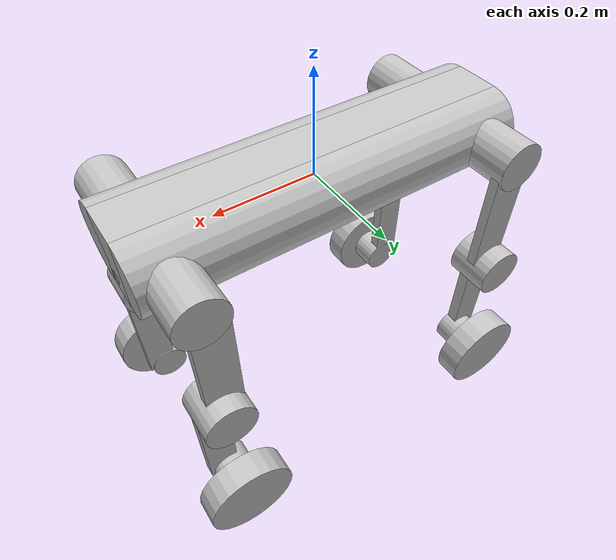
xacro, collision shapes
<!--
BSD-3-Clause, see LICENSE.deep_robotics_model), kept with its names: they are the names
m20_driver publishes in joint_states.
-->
<?xml version="1.0"?>
<robot name="m20" xmlns:xacro="http://www.ros.org/wiki/xacro">
    <xacro:property name="MESH" value="package://m20_description/meshes"/>

    <material name="m20_grey">
        <color rgba="0.752941176470588 0.752941176470588 0.752941176470588 1"/>
    </material>

    <link name="base_link">
        <inertial>
            <origin xyz="0.00355105878308153 0.0016507579200937 -0.00346462146571654" rpy="0 0 0"/>
            <mass value="15.882"/>
            <inertia ixx="0.0880787" ixy="0.001396" ixz="0.000111" iyy="0.533816" iyz="0.000519" izz="0.563915"/>
        </inertial>
        <visual>
            <origin xyz="0 0 0" rpy="0 0 0"/>
            <geometry>
                <mesh filename="${MESH}/base_link.STL"/>
            </geometry>
            <material name="m20_grey"/>
        </visual>
        <collision>
            <origin xyz="0 0 0" rpy="0 0 0"/>
            <geometry>
                <box size="0.75 0.09 0.14"/>
            </geometry>
        </collision>
        <collision>
            <origin xyz="0 0.045 0" rpy="0 1.57079632 0"/>
            <geometry>
                <cylinder length="0.75" radius="0.07"/>
            </geometry>
        </collision>
        <collision>
            <origin xyz="0 -0.045 0" rpy="0 1.57079632 0"/>
            <geometry>
                <cylinder length="0.75" radius="0.07"/>
            </geometry>
        </collision>
    </link>
    <link name="fl_hipx">
        <inertial>
            <origin xyz="-0.0111893129496933 0.00891693461032669 0.000405665689861192" rpy="0 0 0"/>
            <mass value="0.261359958476582"/>
            <inertia ixx="0.000186" ixy="0.000025" ixz="-0.000012" iyy="0.000371" iyz="-0.000008" izz="0.000288"/>
        </inertial>
        <visual>
            <origin xyz="0 0 0" rpy="0 0 0"/>
            <geometry>
                <mesh filename="${MESH}/fl_hipx.STL"/>
            </geometry>
            <material name="m20_grey"/>
        </visual>
        <collision>
            <origin xyz="0 0.055 0" rpy="1.57079632 0 0"/>
            <geometry>
                <cylinder length="0.14" radius="0.048"/>
            </geometry>
        </collision>
    </link>
    <joint name="fl_hipx_joint" type="revolute">
        <origin xyz="0.3141 0.0685 0" rpy="0 0 0"/>
        <parent link="base_link"/>
        <child link="fl_hipx"/>
        <axis xyz="-1 0 0"/>
        <limit lower="-0.436" upper="0.611" effort="76.4" velocity="22.4"/>
    </joint>
    <link name="fl_hipy">
        <inertial>
            <origin xyz="-0.00199374763010413 0.0984389609045802 -0.130663565833427" rpy="0 0 0"/>
            <mass value="2.493"/>
            <inertia ixx="0.038859" ixy="-0.000023" ixz="-0.000037" iyy="0.038040" iyz="-0.005985" izz="0.003848"/>
        </inertial>
        <visual>
            <origin xyz="0 0 0" rpy="0 0 0"/>
            <geometry>
                <mesh filename="${MESH}/fl_hipy.STL"/>
            </geometry>
            <material name="m20_grey"/>
        </visual>
        <collision>
            <origin xyz="-0.01 0.11 -0.125" rpy="0 0 0"/>
            <geometry>
                <box size="0.07 0.02 0.25"/>
            </geometry>
        </collision>
        <collision>
            <origin xyz="0 0.11 -0.25" rpy="1.57079632 0 0"/>
            <geometry>
                <cylinder length="0.09" radius="0.05"/>
            </geometry>
        </collision>
    </link>
    <joint name="fl_hipy_joint" type="revolute">
        <origin xyz="0 0 0" rpy="0 0 0"/>
        <parent link="fl_hipx"/>
        <child link="fl_hipy"/>
        <axis xyz="0 -1 0"/>
        <limit lower="-2.583" upper="2.286" effort="76.4" velocity="22.4"/>
    </joint>
    <link name="fl_knee">
        <inertial>
            <origin xyz="0.00341916513259743 0.0026912421076368 -0.181265498605881" rpy="0 0 0"/>
            <mass value="1.26"/>
            <inertia ixx="0.012936" ixy="-0.000053" ixz="0.000226" iyy="0.013123" iyz="-0.001681" izz="0.001682"/>
        </inertial>
        <visual>
            <origin xyz="0 0 0" rpy="0 0 0"/>
            <geometry>
                <mesh filename="${MESH}/fl_knee.STL"/>
            </geometry>
            <material name="m20_grey"/>
        </visual>
        <collision>
            <origin xyz="0.015 -0.015 -0.125" rpy="0 0 0"/>
            <geometry>
                <box size="0.06 0.025 0.25"/>
            </geometry>
        </collision>
        <collision>
            <origin xyz="0 0.02 -0.25" rpy="1.57079632 0 0"/>
            <geometry>
                <cylinder length="0.1" radius="0.04"/>
            </geometry>
        </collision>
    </link>
    <joint name="fl_knee_joint" type="revolute">
        <origin xyz="0 0.0984 -0.25" rpy="0 0 0"/>
        <parent link="fl_hipy"/>
        <child link="fl_knee"/>
        <axis xyz="0 -1 0"/>
        <limit lower="-2.792" upper="2.809" effort="76.4" velocity="22.4"/>
    </joint>
    <link name="fl_wheel">
        <inertial>
            <origin xyz="-3.11398454355682E-07 0.000279001520740008 5.70329233673394E-07" rpy="0 0 0"/>
            <mass value="0.638"/>
            <inertia ixx="0.001535" ixy="0.0" ixz="0.0" iyy="0.002853" iyz="0.0" izz="0.001535"/>
        </inertial>
        <visual>
            <origin xyz="0 0 0" rpy="0 0 0"/>
            <geometry>
                <mesh filename="${MESH}/fl_wheel.STL"/>
            </geometry>
            <material name="m20_grey"/>
        </visual>
        <collision>
            <origin xyz="0 0 0" rpy="1.57079632 0 0"/>
            <geometry>
                <cylinder length="0.054" radius="0.09"/>
            </geometry>
        </collision>
    </link>
    <joint name="fl_wheel_joint" type="continuous">
        <origin xyz="0 0.059676 -0.25" rpy="0 0 0"/>
        <parent link="fl_knee"/>
        <child link="fl_wheel"/>
        <axis xyz="0 -1 0"/>
        <limit effort="21.6" velocity="79.3"/>
    </joint>
    <link name="fr_hipx">
        <inertial>
            <origin xyz="-0.0110900940309543 -0.0087503473771439 0.000521421017057358" rpy="0 0 0"/>
            <mass value="0.261359958476582"/>
            <inertia ixx="0.000186" ixy="-0.000026" ixz="-0.000012" iyy="0.000371" iyz="0.000008" izz="0.000288"/>
        </inertial>
        <visual>
            <origin xyz="0 0 0" rpy="0 0 0"/>
            <geometry>
                <mesh filename="${MESH}/fr_hipx.STL"/>
            </geometry>
            <material name="m20_grey"/>
        </visual>
        <collision>
            <origin xyz="0 -0.055 0" rpy="1.57079632 0 0"/>
            <geometry>
                <cylinder length="0.14" radius="0.048"/>
            </geometry>
        </collision>
    </link>
    <joint name="fr_hipx_joint" type="revolute">
        <origin xyz="0.3141 -0.0685 0" rpy="0 0 0"/>
        <parent link="base_link"/>
        <child link="fr_hipx"/>
        <axis xyz="-1 0 0"/>
        <limit lower="-0.611" upper="0.436" effort="76.4" velocity="22.4"/>
    </joint>
    <link name="fr_hipy">
        <inertial>
            <origin xyz="-0.00229991904853988 -0.0989709441053532 -0.130925037640537" rpy="0 0 0"/>
            <mass value="2.493"/>
            <inertia ixx="0.039277" ixy="0.000005" ixz="-0.000063" iyy="0.038485" iyz="0.005970" izz="0.003921"/>
        </inertial>
        <visual>
            <origin xyz="0 0 0" rpy="0 0 0"/>
            <geometry>
                <mesh filename="${MESH}/fr_hipy.STL"/>
            </geometry>
            <material name="m20_grey"/>
        </visual>
        <collision>
            <origin xyz="-0.01 -0.11 -0.125" rpy="0 0 0"/>
            <geometry>
                <box size="0.07 0.02 0.25"/>
            </geometry>
        </collision>
        <collision>
            <origin xyz="0 -0.11 -0.25" rpy="1.57079632 0 0"/>
            <geometry>
                <cylinder length="0.09" radius="0.05"/>
            </geometry>
        </collision>
    </link>
    <joint name="fr_hipy_joint" type="revolute">
        <origin xyz="0 0 0" rpy="0 0 0"/>
        <parent link="fr_hipx"/>
        <child link="fr_hipy"/>
        <axis xyz="0 -1 0"/>
        <limit lower="-2.583" upper="2.286" effort="76.4" velocity="22.4"/>
    </joint>
    <link name="fr_knee">
        <inertial>
            <origin xyz="0.0035494546955584 -0.002478843181213 -0.180089236444296" rpy="0 0 0"/>
            <mass value="1.26"/>
            <inertia ixx="0.012936" ixy="0.000053" ixz="0.000226" iyy="0.013123" iyz="0.001681" izz="0.001283"/>
        </inertial>
        <visual>
            <origin xyz="0 0 0" rpy="0 0 0"/>
            <geometry>
                <mesh filename="${MESH}/fr_knee.STL"/>
            </geometry>
            <material name="m20_grey"/>
        </visual>
        <collision>
            <origin xyz="0.015 0.015 -0.125" rpy="0 0 0"/>
            <geometry>
                <box size="0.06 0.025 0.25"/>
            </geometry>
        </collision>
        <collision>
            <origin xyz="0 -0.02 -0.25" rpy="1.57079632 0 0"/>
            <geometry>
                <cylinder length="0.1" radius="0.04"/>
            </geometry>
        </collision>
    </link>
    <joint name="fr_knee_joint" type="revolute">
        <origin xyz="0 -0.0984 -0.25" rpy="0 0 0"/>
        <parent link="fr_hipy"/>
        <child link="fr_knee"/>
        <axis xyz="0 -1 0"/>
        <limit lower="-2.792" upper="2.809" effort="76.4" velocity="22.4"/>
    </joint>
    <link name="fr_wheel">
        <inertial>
            <origin xyz="-6.4732687427016E-07 -0.000279012463466427 -4.62420470803693E-08" rpy="0 0 0"/>
            <mass value="0.638"/>
            <inertia ixx="0.001535" ixy="0.0" ixz="0.0" iyy="0.002853" iyz="0.0" izz="0.001535"/>
        </inertial>
        <visual>
            <origin xyz="0 0 0" rpy="0 0 0"/>
            <geometry>
                <mesh filename="${MESH}/fr_wheel.STL"/>
            </geometry>
            <material name="m20_grey"/>
        </visual>
        <collision>
            <origin xyz="0 0 0" rpy="1.57079632 0 0"/>
            <geometry>
                <cylinder length="0.054" radius="0.09"/>
            </geometry>
        </collision>
    </link>
    <joint name="fr_wheel_joint" type="continuous">
        <origin xyz="0 -0.059676 -0.25" rpy="0 0 0"/>
        <parent link="fr_knee"/>
        <child link="fr_wheel"/>
        <axis xyz="0 -1 0"/>
        <limit effort="21.6" velocity="79.3"/>
    </joint>
    <link name="hl_hipx">
        <inertial>
            <origin xyz="0.0110900940233134 0.00875014035040743 0.000524883746291591" rpy="0 0 0"/>
            <mass value="0.261359958476582"/>
            <inertia ixx="0.000186" ixy="-0.000025" ixz="0.000012" iyy="0.000371" iyz="-0.000008" izz="0.000288"/>
        </inertial>
        <visual>
            <origin xyz="0 0 0" rpy="0 0 0"/>
            <geometry>
                <mesh filename="${MESH}/hl_hipx.STL"/>
            </geometry>
            <material name="m20_grey"/>
        </visual>
        <collision>
            <origin xyz="0 0.055 0" rpy="1.57079632 0 0"/>
            <geometry>
                <cylinder length="0.14" radius="0.048"/>
            </geometry>
        </collision>
    </link>
    <joint name="hl_hipx_joint" type="revolute">
        <origin xyz="-0.3141 0.0685 0" rpy="0 0 0"/>
        <parent link="base_link"/>
        <child link="hl_hipx"/>
        <axis xyz="-1 0 0"/>
        <limit lower="-0.436" upper="0.611" effort="76.4" velocity="22.4"/>
    </joint>
    <link name="hl_hipy">
        <inertial>
            <origin xyz="0.00204343366218146 0.0990227473833045 -0.13069726691312" rpy="0 0 0"/>
            <mass value="2.493"/>
            <inertia ixx="0.039361" ixy="0.000029" ixz="0.000009" iyy="0.038554" iyz="-0.006001" izz="0.003914"/>
        </inertial>
        <visual>
            <origin xyz="0 0 0" rpy="0 0 0"/>
            <geometry>
                <mesh filename="${MESH}/hl_hipy.STL"/>
            </geometry>
            <material name="m20_grey"/>
        </visual>
        <collision>
            <origin xyz="0.01 0.11 -0.125" rpy="0 0 0"/>
            <geometry>
                <box size="0.07 0.02 0.25"/>
            </geometry>
        </collision>
        <collision>
            <origin xyz="0 0.11 -0.25" rpy="1.57079632 0 0"/>
            <geometry>
                <cylinder length="0.09" radius="0.05"/>
            </geometry>
        </collision>
    </link>
    <joint name="hl_hipy_joint" type="revolute">
        <origin xyz="0 0 0" rpy="0 0 0"/>
        <parent link="hl_hipx"/>
        <child link="hl_hipy"/>
        <axis xyz="0 -1 0"/>
        <limit lower="-2.286" upper="2.583" effort="76.4" velocity="22.4"/>
    </joint>
    <link name="hl_knee">
        <inertial>
            <origin xyz="-0.00354945209738589 0.00247884637205834 -0.180089257150601" rpy="0 0 0"/>
            <mass value="1.26"/>
            <inertia ixx="0.012936" ixy="0.000053" ixz="-0.000226" iyy="0.013123" iyz="-0.001681" izz="0.001283"/>
        </inertial>
        <visual>
            <origin xyz="0 0 0" rpy="0 0 0"/>
            <geometry>
                <mesh filename="${MESH}/hl_knee.STL"/>
            </geometry>
            <material name="m20_grey"/>
        </visual>
        <collision>
            <origin xyz="-0.015 -0.015 -0.125" rpy="0 0 0"/>
            <geometry>
                <box size="0.06 0.025 0.25"/>
            </geometry>
        </collision>
        <collision>
            <origin xyz="0 0.02 -0.25" rpy="1.57079632 0 0"/>
            <geometry>
                <cylinder length="0.1" radius="0.04"/>
            </geometry>
        </collision>
    </link>
    <joint name="hl_knee_joint" type="revolute">
        <origin xyz="0 0.0984 -0.25" rpy="0 0 0"/>
        <parent link="hl_hipy"/>
        <child link="hl_knee"/>
        <axis xyz="0 -1 0"/>
        <limit lower="-2.809" upper="2.792" effort="76.4" velocity="22.4"/>
    </joint>
    <link name="hl_wheel">
        <inertial>
            <origin xyz="-6.07889369508285E-07 0.000279009097070765 2.10489879304276E-07" rpy="0 0 0"/>
            <mass value="0.638"/>
            <inertia ixx="0.001535" ixy="0.0" ixz="0.0" iyy="0.002853" iyz="0.0" izz="0.001535"/>
        </inertial>
        <visual>
            <origin xyz="0 0 0" rpy="0 0 0"/>
            <geometry>
                <mesh filename="${MESH}/hl_wheel.STL"/>
            </geometry>
            <material name="m20_grey"/>
        </visual>
        <collision>
            <origin xyz="0 0 0" rpy="1.57079632 0 0"/>
            <geometry>
                <cylinder length="0.054" radius="0.09"/>
            </geometry>
        </collision>
    </link>
    <joint name="hl_wheel_joint" type="continuous">
        <origin xyz="0 0.059676 -0.25" rpy="0 0 0"/>
        <parent link="hl_knee"/>
        <child link="hl_wheel"/>
        <axis xyz="0 -1 0"/>
        <limit effort="21.6" velocity="79.3"/>
    </joint>
    <link name="hr_hipx">
        <inertial>
            <origin xyz="0.0110901558226165 -0.00875011717083631 0.000524936954718227" rpy="0 0 0"/>
            <mass value="0.261359958476582"/>
            <inertia ixx="0.000186" ixy="0.000025" ixz="0.000012" iyy="0.000371" iyz="0.000008" izz="0.000288"/>
        </inertial>
        <visual>
            <origin xyz="0 0 0" rpy="0 0 0"/>
            <geometry>
                <mesh filename="${MESH}/hr_hipx.STL"/>
            </geometry>
            <material name="m20_grey"/>
        </visual>
        <collision>
            <origin xyz="0 -0.055 0" rpy="1.57079632 0 0"/>
            <geometry>
                <cylinder length="0.14" radius="0.048"/>
            </geometry>
        </collision>
    </link>
    <joint name="hr_hipx_joint" type="revolute">
        <origin xyz="-0.3141 -0.0685 0" rpy="0 0 0"/>
        <parent link="base_link"/>
        <child link="hr_hipx"/>
        <axis xyz="-1 0 0"/>
        <limit lower="-0.611" upper="0.436" effort="76.4" velocity="22.4"/>
    </joint>
    <link name="hr_hipy">
        <inertial>
            <origin xyz="0.00199199678434109 -0.0983704174694303 -0.13056065751366" rpy="0 0 0"/>
            <mass value="2.493"/>
            <inertia ixx="0.038878" ixy="-0.000022" ixz="0.000034" iyy="0.038053" iyz="0.005995" izz="0.003854"/>
        </inertial>
        <visual>
            <origin xyz="0 0 0" rpy="0 0 0"/>
            <geometry>
                <mesh filename="${MESH}/hr_hipy.STL"/>
            </geometry>
            <material name="m20_grey"/>
        </visual>
        <collision>
            <origin xyz="0.01 -0.11 -0.125" rpy="0 0 0"/>
            <geometry>
                <box size="0.07 0.02 0.25"/>
            </geometry>
        </collision>
        <collision>
            <origin xyz="0 -0.11 -0.25" rpy="1.57079632 0 0"/>
            <geometry>
                <cylinder length="0.09" radius="0.05"/>
            </geometry>
        </collision>
    </link>
    <joint name="hr_hipy_joint" type="revolute">
        <origin xyz="0 0 0" rpy="0 0 0"/>
        <parent link="hr_hipx"/>
        <child link="hr_hipy"/>
        <axis xyz="0 -1 0"/>
        <limit lower="-2.286" upper="2.583" effort="76.4" velocity="22.4"/>
    </joint>
    <link name="hr_knee">
        <inertial>
            <origin xyz="-0.00341053036115846 -0.0027020185369851 -0.181287492263963" rpy="0 0 0"/>
            <mass value="1.26"/>
            <inertia ixx="0.012936" ixy="-0.000053" ixz="-0.000226" iyy="0.013123" iyz="0.001681" izz="0.001283"/>
        </inertial>
        <visual>
            <origin xyz="0 0 0" rpy="0 0 0"/>
            <geometry>
                <mesh filename="${MESH}/hr_knee.STL"/>
            </geometry>
            <material name="m20_grey"/>
        </visual>
        <collision>
            <origin xyz="-0.015 0.015 -0.125" rpy="0 0 0"/>
            <geometry>
                <box size="0.06 0.025 0.25"/>
            </geometry>
        </collision>
        <collision>
            <origin xyz="0 -0.02 -0.25" rpy="1.57079632 0 0"/>
            <geometry>
                <cylinder length="0.1" radius="0.04"/>
            </geometry>
        </collision>
    </link>
    <joint name="hr_knee_joint" type="revolute">
        <origin xyz="0 -0.0984 -0.25" rpy="0 0 0"/>
        <parent link="hr_hipy"/>
        <child link="hr_knee"/>
        <axis xyz="0 -1 0"/>
        <limit lower="-2.809" upper="2.792" effort="76.4" velocity="22.4"/>
    </joint>
    <link name="hr_wheel">
        <inertial>
            <origin xyz="6.09746291457824E-07 -0.00027900886004309 2.0131377032051E-07" rpy="0 0 0"/>
            <mass value="0.638"/>
            <inertia ixx="0.001535" ixy="0.0" ixz="0.0" iyy="0.002853" iyz="0.0" izz="0.001535"/>
        </inertial>
        <visual>
            <origin xyz="0 0 0" rpy="0 0 0"/>
            <geometry>
                <mesh filename="${MESH}/hr_wheel.STL"/>
            </geometry>
            <material name="m20_grey"/>
        </visual>
        <collision>
            <origin xyz="0 0 0" rpy="1.57079632 0 0"/>
            <geometry>
                <cylinder length="0.054" radius="0.09"/>
            </geometry>
        </collision>
    </link>
    <joint name="hr_wheel_joint" type="continuous">
        <origin xyz="0 -0.059676 -0.25" rpy="0 0 0"/>
        <parent link="hr_knee"/>
        <child link="hr_wheel"/>
        <axis xyz="0 -1 0"/>
        <limit effort="21.6" velocity="79.3"/>
    </joint>

    <!-- IMU: the M20 documents neither the position nor the orientation of its IMU, so imu_link
         is base_link (identity): the attitude m20_driver publishes in imu is read as the body's. -->
    <link name="imu_link"/>
    <joint name="imu_joint" type="fixed">
        <origin xyz="0 0 0" rpy="0 0 0"/>
        <parent link="base_link"/>
        <child link="imu_link"/>
    </joint>

    <!-- CA9B sensor frames. Translations are converted from millimeters to meters.
         The source document specifies no additional rotation for these sensors. -->
    <link name="front_camera_link"/>
    <joint name="front_camera_joint" type="fixed">
        <origin xyz="0.37646 0 0.03738" rpy="0 0 0"/>
        <parent link="base_link"/>
        <child link="front_camera_link"/>
    </joint>

    <link name="rear_camera_link"/>
    <joint name="rear_camera_joint" type="fixed">
        <origin xyz="-0.37646 0 0.03738" rpy="0 0 0"/>
        <parent link="base_link"/>
        <child link="rear_camera_link"/>
    </joint>

    <link name="front_lidar_link"/>
    <joint name="front_lidar_joint" type="fixed">
        <origin xyz="0.32028 0 -0.013" rpy="0 0 0"/>
        <parent link="base_link"/>
        <child link="front_lidar_link"/>
    </joint>

    <link name="rear_lidar_link"/>
    <joint name="rear_lidar_joint" type="fixed">
        <origin xyz="-0.32028 0 -0.013" rpy="0 0 0"/>
        <parent link="base_link"/>
        <child link="rear_lidar_link"/>
    </joint>
</robot>
